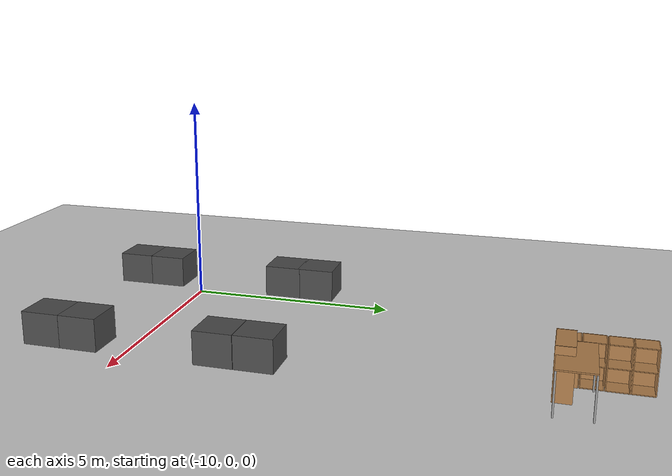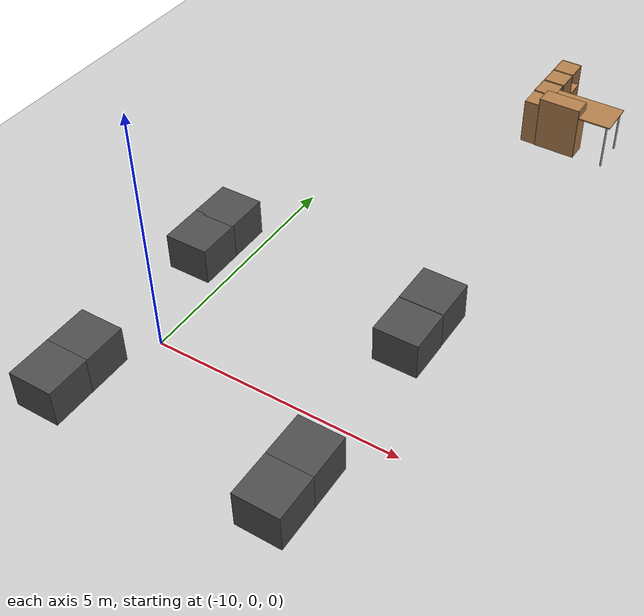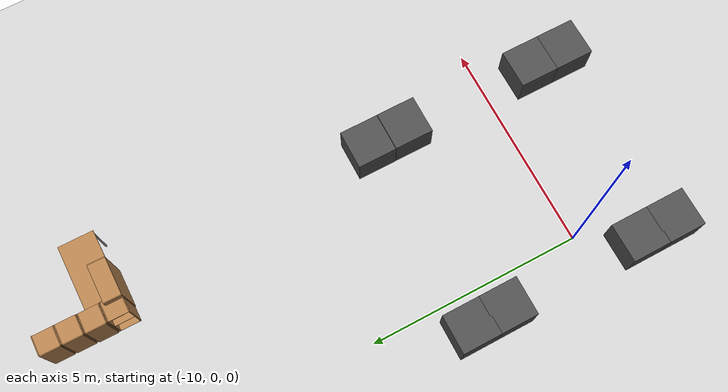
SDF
<sdf version="1.7">
 <world name="default">
  <model name="ground_plane">
   <static>1</static>
   <link name="link">
    <collision name="collision">
     <geometry><plane><normal>0 0 1</normal><size>100 100</size></plane></geometry>
     <surface><friction><ode><mu>100</mu><mu2>50</mu2></ode></friction></surface>
    </collision>
    <visual name="visual">
     <cast_shadows>0</cast_shadows>
     <geometry><plane><normal>0 0 1</normal><size>100 100</size></plane></geometry>
     <material>
      <script><uri>file://media/materials/scripts/gazebo.material</uri><name>Gazebo/Grey</name></script>
     </material>
    </visual>
   </link>
  </model>
  <model name="table">
   <static>1</static>
   <link name="link">
    <collision name="surface">
     <pose>0 0 1 0 -0 0</pose>
     <geometry><box><size>1.5 0.8 0.03</size></box></geometry>
     <surface><friction><ode><mu>0.6</mu><mu2>0.6</mu2></ode></friction></surface>
    </collision>
    <visual name="visual1">
     <pose>0 0 1 0 -0 0</pose>
     <geometry><box><size>1.5 0.8 0.03</size></box></geometry>
     <material>
      <script><uri>file://media/materials/scripts/gazebo.material</uri><name>Gazebo/Wood</name></script>
     </material>
    </visual>
    <collision name="front_left_leg">
     <pose>0.68 0.38 0.5 0 -0 0</pose>
     <geometry><cylinder><radius>0.02</radius><length>1</length></cylinder></geometry>
    </collision>
    <visual name="front_left_leg">
     <pose>0.68 0.38 0.5 0 -0 0</pose>
     <geometry><cylinder><radius>0.02</radius><length>1</length></cylinder></geometry>
     <material>
      <script><uri>file://media/materials/scripts/gazebo.material</uri><name>Gazebo/Grey</name></script>
     </material>
    </visual>
    <collision name="front_right_leg">
     <pose>0.68 -0.38 0.5 0 -0 0</pose>
     <geometry><cylinder><radius>0.02</radius><length>1</length></cylinder></geometry>
    </collision>
    <visual name="front_right_leg">
     <pose>0.68 -0.38 0.5 0 -0 0</pose>
     <geometry><cylinder><radius>0.02</radius><length>1</length></cylinder></geometry>
     <material>
      <script><uri>file://media/materials/scripts/gazebo.material</uri><name>Gazebo/Grey</name></script>
     </material>
    </visual>
    <collision name="back_right_leg">
     <pose>-0.68 -0.38 0.5 0 -0 0</pose>
     <geometry><cylinder><radius>0.02</radius><length>1</length></cylinder></geometry>
    </collision>
    <visual name="back_right_leg">
     <pose>-0.68 -0.38 0.5 0 -0 0</pose>
     <geometry><cylinder><radius>0.02</radius><length>1</length></cylinder></geometry>
     <material>
      <script><uri>file://media/materials/scripts/gazebo.material</uri><name>Gazebo/Grey</name></script>
     </material>
    </visual>
    <collision name="back_left_leg">
     <pose>-0.68 0.38 0.5 0 -0 0</pose>
     <geometry><cylinder><radius>0.02</radius><length>1</length></cylinder></geometry>
    </collision>
    <visual name="back_left_leg">
     <pose>-0.68 0.38 0.5 0 -0 0</pose>
     <geometry><cylinder><radius>0.02</radius><length>1</length></cylinder></geometry>
     <material>
      <script><uri>file://media/materials/scripts/gazebo.material</uri><name>Gazebo/Grey</name></script>
     </material>
    </visual>
   </link>
   <pose>-5.99294 9.5753 0 0 -0 0</pose>
  </model>
  <model name="cabinet_clone_0">
   <static>1</static>
   <link name="cabinet_bottom_plate">
    <inertial>
     <pose>0 0 -1 0 -0 0</pose>
     <inertia><ixx>2.05</ixx><ixy>0</ixy><ixz>0</ixz><iyy>2.05</iyy><iyz>0</iyz><izz>2.05</izz></inertia>
     <mass>25</mass>
    </inertial>
    <collision name="cabinet_bottom_plate_geom">
     <pose>0 0 0.01 0 -0 0</pose>
     <geometry><box><size>0.45 0.45 0.02</size></box></geometry>
    </collision>
    <visual name="cabinet_bottom_plate_geom_visual">
     <pose>0 0 0.01 0 -0 0</pose>
     <geometry><box><size>0.45 0.45 0.02</size></box></geometry>
     <material>
      <script><uri>file://media/materials/scripts/gazebo.material</uri><name>Gazebo/Wood</name></script>
     </material>
    </visual>
    <collision name="cabinet_bottom_plate_geom_cabinet_back_plate">
     <pose>0.235 0 0.51 0 -0 0</pose>
     <geometry><box><size>0.02 0.45 1.02</size></box></geometry>
    </collision>
    <visual name="cabinet_bottom_plate_geom_cabinet_back_plate_visual">
     <pose>0.235 0 0.51 0 -0 0</pose>
     <geometry><box><size>0.02 0.45 1.02</size></box></geometry>
     <material>
      <script><uri>file://media/materials/scripts/gazebo.material</uri><name>Gazebo/Wood</name></script>
     </material>
    </visual>
    <collision name="cabinet_bottom_plate_geom_cabinet_left_plate">
     <pose>0 0.235 0.51 0 -0 0</pose>
     <geometry><box><size>0.45 0.02 1.02</size></box></geometry>
    </collision>
    <visual name="cabinet_bottom_plate_geom_cabinet_left_plate_visual">
     <pose>0 0.235 0.51 0 -0 0</pose>
     <geometry><box><size>0.45 0.02 1.02</size></box></geometry>
     <material>
      <script><uri>file://media/materials/scripts/gazebo.material</uri><name>Gazebo/Wood</name></script>
     </material>
    </visual>
    <collision name="cabinet_bottom_plate_geom_cabinet_middle_plate">
     <pose>0 0 0.51 0 -0 0</pose>
     <geometry><box><size>0.45 0.45 0.02</size></box></geometry>
    </collision>
    <visual name="cabinet_bottom_plate_geom_cabinet_middle_plate_visual">
     <pose>0 0 0.51 0 -0 0</pose>
     <geometry><box><size>0.45 0.45 0.02</size></box></geometry>
     <material>
      <script><uri>file://media/materials/scripts/gazebo.material</uri><name>Gazebo/Wood</name></script>
     </material>
    </visual>
    <collision name="cabinet_bottom_plate_geom_cabinet_right_plate">
     <pose>0 -0.235 0.51 0 -0 0</pose>
     <geometry><box><size>0.45 0.02 1.02</size></box></geometry>
    </collision>
    <visual name="cabinet_bottom_plate_geom_cabinet_right_plate_visual">
     <pose>0 -0.235 0.51 0 -0 0</pose>
     <geometry><box><size>0.45 0.02 1.02</size></box></geometry>
     <material>
      <script><uri>file://media/materials/scripts/gazebo.material</uri><name>Gazebo/Wood</name></script>
     </material>
    </visual>
    <collision name="cabinet_bottom_plate_geom_cabinet_top_plate">
     <pose>0 0 1.01 0 -0 0</pose>
     <geometry><box><size>0.45 0.45 0.02</size></box></geometry>
    </collision>
    <visual name="cabinet_bottom_plate_geom_cabinet_top_plate_visual">
     <pose>0 0 1.01 0 -0 0</pose>
     <geometry><box><size>0.45 0.45 0.02</size></box></geometry>
     <material>
      <script><uri>file://media/materials/scripts/gazebo.material</uri><name>Gazebo/Wood</name></script>
     </material>
    </visual>
   </link>
   <pose>-6.97745 9.41498 0 0 -0 0</pose>
  </model>
  <model name="bookshelf_clone_2">
   <static>1</static>
   <link name="link">
    <inertial><mass>1</mass></inertial>
    <collision name="back">
     <pose>0 0.005 0.6 0 -0 0</pose>
     <geometry><box><size>0.9 0.01 1.2</size></box></geometry>
    </collision>
    <visual name="visual1">
     <pose>0 0.005 0.6 0 -0 0</pose>
     <geometry><box><size>0.9 0.01 1.2</size></box></geometry>
     <material>
      <script><uri>file://media/materials/scripts/gazebo.material</uri><name>Gazebo/Wood</name></script>
     </material>
    </visual>
    <collision name="left_side">
     <pose>0.45 -0.195 0.6 0 -0 0</pose>
     <geometry><box><size>0.02 0.4 1.2</size></box></geometry>
    </collision>
    <visual name="visual2">
     <pose>0.45 -0.195 0.6 0 -0 0</pose>
     <geometry><box><size>0.02 0.4 1.2</size></box></geometry>
     <material>
      <script><uri>file://media/materials/scripts/gazebo.material</uri><name>Gazebo/Wood</name></script>
     </material>
    </visual>
    <collision name="right_side">
     <pose>-0.45 -0.195 0.6 0 -0 0</pose>
     <geometry><box><size>0.02 0.4 1.2</size></box></geometry>
    </collision>
    <visual name="visual3">
     <pose>-0.45 -0.195 0.6 0 -0 0</pose>
     <geometry><box><size>0.02 0.4 1.2</size></box></geometry>
     <material>
      <script><uri>file://media/materials/scripts/gazebo.material</uri><name>Gazebo/Wood</name></script>
     </material>
    </visual>
    <collision name="bottom">
     <pose>0 -0.195 0.03 0 -0 0</pose>
     <geometry><box><size>0.88 0.4 0.06</size></box></geometry>
    </collision>
    <visual name="visual4">
     <pose>0 -0.195 0.03 0 -0 0</pose>
     <geometry><box><size>0.88 0.4 0.06</size></box></geometry>
     <material>
      <script><uri>file://media/materials/scripts/gazebo.material</uri><name>Gazebo/Wood</name></script>
     </material>
    </visual>
    <collision name="top">
     <pose>0 -0.195 1.19 0 -0 0</pose>
     <geometry><box><size>0.88 0.4 0.02</size></box></geometry>
    </collision>
    <visual name="visual5">
     <pose>0 -0.195 1.19 0 -0 0</pose>
     <geometry><box><size>0.88 0.4 0.02</size></box></geometry>
     <material>
      <script><uri>file://media/materials/scripts/gazebo.material</uri><name>Gazebo/Wood</name></script>
     </material>
    </visual>
    <collision name="low_shelf">
     <pose>0 -0.195 0.43 0 -0 0</pose>
     <geometry><box><size>0.88 0.4 0.02</size></box></geometry>
    </collision>
    <visual name="visual6">
     <pose>0 -0.195 0.43 0 -0 0</pose>
     <geometry><box><size>0.88 0.4 0.02</size></box></geometry>
     <material>
      <script><uri>file://media/materials/scripts/gazebo.material</uri><name>Gazebo/Wood</name></script>
     </material>
    </visual>
    <collision name="high_shelf">
     <pose>0 -0.195 0.8 0 -0 0</pose>
     <geometry><box><size>0.88 0.4 0.02</size></box></geometry>
    </collision>
    <visual name="visual7">
     <pose>0 -0.195 0.8 0 -0 0</pose>
     <geometry><box><size>0.88 0.4 0.02</size></box></geometry>
     <material>
      <script><uri>file://media/materials/scripts/gazebo.material</uri><name>Gazebo/Wood</name></script>
     </material>
    </visual>
   </link>
   <pose>-6.40578 9.16191 0 0 -0 3.13728</pose>
  </model>
  <model name="cabinet_clone_0_clone">
   <static>1</static>
   <link name="cabinet_bottom_plate">
    <inertial>
     <pose>0 0 -1 0 -0 0</pose>
     <inertia><ixx>2.05</ixx><ixy>0</ixy><ixz>0</ixz><iyy>2.05</iyy><iyz>0</iyz><izz>2.05</izz></inertia>
     <mass>25</mass>
    </inertial>
    <collision name="cabinet_bottom_plate_geom">
     <pose>0 0 0.01 0 -0 0</pose>
     <geometry><box><size>0.45 0.45 0.02</size></box></geometry>
    </collision>
    <visual name="cabinet_bottom_plate_geom_visual">
     <pose>0 0 0.01 0 -0 0</pose>
     <geometry><box><size>0.45 0.45 0.02</size></box></geometry>
     <material>
      <script><uri>file://media/materials/scripts/gazebo.material</uri><name>Gazebo/Wood</name></script>
     </material>
    </visual>
    <collision name="cabinet_bottom_plate_geom_cabinet_back_plate">
     <pose>0.235 0 0.51 0 -0 0</pose>
     <geometry><box><size>0.02 0.45 1.02</size></box></geometry>
    </collision>
    <visual name="cabinet_bottom_plate_geom_cabinet_back_plate_visual">
     <pose>0.235 0 0.51 0 -0 0</pose>
     <geometry><box><size>0.02 0.45 1.02</size></box></geometry>
     <material>
      <script><uri>file://media/materials/scripts/gazebo.material</uri><name>Gazebo/Wood</name></script>
     </material>
    </visual>
    <collision name="cabinet_bottom_plate_geom_cabinet_left_plate">
     <pose>0 0.235 0.51 0 -0 0</pose>
     <geometry><box><size>0.45 0.02 1.02</size></box></geometry>
    </collision>
    <visual name="cabinet_bottom_plate_geom_cabinet_left_plate_visual">
     <pose>0 0.235 0.51 0 -0 0</pose>
     <geometry><box><size>0.45 0.02 1.02</size></box></geometry>
     <material>
      <script><uri>file://media/materials/scripts/gazebo.material</uri><name>Gazebo/Wood</name></script>
     </material>
    </visual>
    <collision name="cabinet_bottom_plate_geom_cabinet_middle_plate">
     <pose>0 0 0.51 0 -0 0</pose>
     <geometry><box><size>0.45 0.45 0.02</size></box></geometry>
    </collision>
    <visual name="cabinet_bottom_plate_geom_cabinet_middle_plate_visual">
     <pose>0 0 0.51 0 -0 0</pose>
     <geometry><box><size>0.45 0.45 0.02</size></box></geometry>
     <material>
      <script><uri>file://media/materials/scripts/gazebo.material</uri><name>Gazebo/Wood</name></script>
     </material>
    </visual>
    <collision name="cabinet_bottom_plate_geom_cabinet_right_plate">
     <pose>0 -0.235 0.51 0 -0 0</pose>
     <geometry><box><size>0.45 0.02 1.02</size></box></geometry>
    </collision>
    <visual name="cabinet_bottom_plate_geom_cabinet_right_plate_visual">
     <pose>0 -0.235 0.51 0 -0 0</pose>
     <geometry><box><size>0.45 0.02 1.02</size></box></geometry>
     <material>
      <script><uri>file://media/materials/scripts/gazebo.material</uri><name>Gazebo/Wood</name></script>
     </material>
    </visual>
    <collision name="cabinet_bottom_plate_geom_cabinet_top_plate">
     <pose>0 0 1.01 0 -0 0</pose>
     <geometry><box><size>0.45 0.45 0.02</size></box></geometry>
    </collision>
    <visual name="cabinet_bottom_plate_geom_cabinet_top_plate_visual">
     <pose>0 0 1.01 0 -0 0</pose>
     <geometry><box><size>0.45 0.45 0.02</size></box></geometry>
     <material>
      <script><uri>file://media/materials/scripts/gazebo.material</uri><name>Gazebo/Wood</name></script>
     </material>
    </visual>
   </link>
   <pose>-6.97028 9.91562 0 0 -0 3.13538</pose>
  </model>
  <model name="cabinet_clone_0_clone_0">
   <static>1</static>
   <link name="cabinet_bottom_plate">
    <inertial>
     <pose>0 0 -1 0 -0 0</pose>
     <inertia><ixx>2.05</ixx><ixy>0</ixy><ixz>0</ixz><iyy>2.05</iyy><iyz>0</iyz><izz>2.05</izz></inertia>
     <mass>25</mass>
    </inertial>
    <collision name="cabinet_bottom_plate_geom">
     <pose>0 0 0.01 0 -0 0</pose>
     <geometry><box><size>0.45 0.45 0.02</size></box></geometry>
    </collision>
    <visual name="cabinet_bottom_plate_geom_visual">
     <pose>0 0 0.01 0 -0 0</pose>
     <geometry><box><size>0.45 0.45 0.02</size></box></geometry>
     <material>
      <script><uri>file://media/materials/scripts/gazebo.material</uri><name>Gazebo/Wood</name></script>
     </material>
    </visual>
    <collision name="cabinet_bottom_plate_geom_cabinet_back_plate">
     <pose>0.235 0 0.51 0 -0 0</pose>
     <geometry><box><size>0.02 0.45 1.02</size></box></geometry>
    </collision>
    <visual name="cabinet_bottom_plate_geom_cabinet_back_plate_visual">
     <pose>0.235 0 0.51 0 -0 0</pose>
     <geometry><box><size>0.02 0.45 1.02</size></box></geometry>
     <material>
      <script><uri>file://media/materials/scripts/gazebo.material</uri><name>Gazebo/Wood</name></script>
     </material>
    </visual>
    <collision name="cabinet_bottom_plate_geom_cabinet_left_plate">
     <pose>0 0.235 0.51 0 -0 0</pose>
     <geometry><box><size>0.45 0.02 1.02</size></box></geometry>
    </collision>
    <visual name="cabinet_bottom_plate_geom_cabinet_left_plate_visual">
     <pose>0 0.235 0.51 0 -0 0</pose>
     <geometry><box><size>0.45 0.02 1.02</size></box></geometry>
     <material>
      <script><uri>file://media/materials/scripts/gazebo.material</uri><name>Gazebo/Wood</name></script>
     </material>
    </visual>
    <collision name="cabinet_bottom_plate_geom_cabinet_middle_plate">
     <pose>0 0 0.51 0 -0 0</pose>
     <geometry><box><size>0.45 0.45 0.02</size></box></geometry>
    </collision>
    <visual name="cabinet_bottom_plate_geom_cabinet_middle_plate_visual">
     <pose>0 0 0.51 0 -0 0</pose>
     <geometry><box><size>0.45 0.45 0.02</size></box></geometry>
     <material>
      <script><uri>file://media/materials/scripts/gazebo.material</uri><name>Gazebo/Wood</name></script>
     </material>
    </visual>
    <collision name="cabinet_bottom_plate_geom_cabinet_right_plate">
     <pose>0 -0.235 0.51 0 -0 0</pose>
     <geometry><box><size>0.45 0.02 1.02</size></box></geometry>
    </collision>
    <visual name="cabinet_bottom_plate_geom_cabinet_right_plate_visual">
     <pose>0 -0.235 0.51 0 -0 0</pose>
     <geometry><box><size>0.45 0.02 1.02</size></box></geometry>
     <material>
      <script><uri>file://media/materials/scripts/gazebo.material</uri><name>Gazebo/Wood</name></script>
     </material>
    </visual>
    <collision name="cabinet_bottom_plate_geom_cabinet_top_plate">
     <pose>0 0 1.01 0 -0 0</pose>
     <geometry><box><size>0.45 0.45 0.02</size></box></geometry>
    </collision>
    <visual name="cabinet_bottom_plate_geom_cabinet_top_plate_visual">
     <pose>0 0 1.01 0 -0 0</pose>
     <geometry><box><size>0.45 0.45 0.02</size></box></geometry>
     <material>
      <script><uri>file://media/materials/scripts/gazebo.material</uri><name>Gazebo/Wood</name></script>
     </material>
    </visual>
   </link>
   <pose>-6.96165 10.418 0 0 -0 3.13538</pose>
  </model>
  <model name="cabinet_clone_0_clone_1">
   <static>1</static>
   <link name="cabinet_bottom_plate">
    <inertial>
     <pose>0 0 -1 0 -0 0</pose>
     <inertia><ixx>2.05</ixx><ixy>0</ixy><ixz>0</ixz><iyy>2.05</iyy><iyz>0</iyz><izz>2.05</izz></inertia>
     <mass>25</mass>
    </inertial>
    <collision name="cabinet_bottom_plate_geom">
     <pose>0 0 0.01 0 -0 0</pose>
     <geometry><box><size>0.45 0.45 0.02</size></box></geometry>
    </collision>
    <visual name="cabinet_bottom_plate_geom_visual">
     <pose>0 0 0.01 0 -0 0</pose>
     <geometry><box><size>0.45 0.45 0.02</size></box></geometry>
     <material>
      <script><uri>file://media/materials/scripts/gazebo.material</uri><name>Gazebo/Wood</name></script>
     </material>
    </visual>
    <collision name="cabinet_bottom_plate_geom_cabinet_back_plate">
     <pose>0.235 0 0.51 0 -0 0</pose>
     <geometry><box><size>0.02 0.45 1.02</size></box></geometry>
    </collision>
    <visual name="cabinet_bottom_plate_geom_cabinet_back_plate_visual">
     <pose>0.235 0 0.51 0 -0 0</pose>
     <geometry><box><size>0.02 0.45 1.02</size></box></geometry>
     <material>
      <script><uri>file://media/materials/scripts/gazebo.material</uri><name>Gazebo/Wood</name></script>
     </material>
    </visual>
    <collision name="cabinet_bottom_plate_geom_cabinet_left_plate">
     <pose>0 0.235 0.51 0 -0 0</pose>
     <geometry><box><size>0.45 0.02 1.02</size></box></geometry>
    </collision>
    <visual name="cabinet_bottom_plate_geom_cabinet_left_plate_visual">
     <pose>0 0.235 0.51 0 -0 0</pose>
     <geometry><box><size>0.45 0.02 1.02</size></box></geometry>
     <material>
      <script><uri>file://media/materials/scripts/gazebo.material</uri><name>Gazebo/Wood</name></script>
     </material>
    </visual>
    <collision name="cabinet_bottom_plate_geom_cabinet_middle_plate">
     <pose>0 0 0.51 0 -0 0</pose>
     <geometry><box><size>0.45 0.45 0.02</size></box></geometry>
    </collision>
    <visual name="cabinet_bottom_plate_geom_cabinet_middle_plate_visual">
     <pose>0 0 0.51 0 -0 0</pose>
     <geometry><box><size>0.45 0.45 0.02</size></box></geometry>
     <material>
      <script><uri>file://media/materials/scripts/gazebo.material</uri><name>Gazebo/Wood</name></script>
     </material>
    </visual>
    <collision name="cabinet_bottom_plate_geom_cabinet_right_plate">
     <pose>0 -0.235 0.51 0 -0 0</pose>
     <geometry><box><size>0.45 0.02 1.02</size></box></geometry>
    </collision>
    <visual name="cabinet_bottom_plate_geom_cabinet_right_plate_visual">
     <pose>0 -0.235 0.51 0 -0 0</pose>
     <geometry><box><size>0.45 0.02 1.02</size></box></geometry>
     <material>
      <script><uri>file://media/materials/scripts/gazebo.material</uri><name>Gazebo/Wood</name></script>
     </material>
    </visual>
    <collision name="cabinet_bottom_plate_geom_cabinet_top_plate">
     <pose>0 0 1.01 0 -0 0</pose>
     <geometry><box><size>0.45 0.45 0.02</size></box></geometry>
    </collision>
    <visual name="cabinet_bottom_plate_geom_cabinet_top_plate_visual">
     <pose>0 0 1.01 0 -0 0</pose>
     <geometry><box><size>0.45 0.45 0.02</size></box></geometry>
     <material>
      <script><uri>file://media/materials/scripts/gazebo.material</uri><name>Gazebo/Wood</name></script>
     </material>
    </visual>
   </link>
   <pose>-6.95978 10.9123 0 0 -0 3.13538</pose>
  </model>
  <model name="darkgreybox">
   <link name="link">
    <inertial>
     <mass>1</mass>
     <inertia>
      <ixx>0.166667</ixx>
      <ixy>0</ixy>
      <ixz>0</ixz>
      <iyy>0.166667</iyy>
      <iyz>0</iyz>
      <izz>0.166667</izz>
     </inertia>
    </inertial>
    <visual name="visual">
     <geometry><box><size>0.909396 0.912851 0.783272</size></box></geometry>
     <material>
      <script><name>Gazebo/DarkGrey</name><uri>file://media/materials/scripts/gazebo.material</uri></script>
      <shader type="pixel"><normal_map>__default__</normal_map></shader>
      <ambient>0.175 0.175 0.175 1</ambient>
      <diffuse>0.175 0.175 0.175 1</diffuse>
      <specular>0.175 0.175 0.175 1</specular>
      <emissive>0 0 0 1</emissive>
     </material>
    </visual>
    <collision name="collision">
     <geometry><box><size>0.909396 0.912851 0.783272</size></box></geometry>
     <surface>
      <friction>
       <ode><mu>1</mu><mu2>1</mu2><fdir1>0 0 0</fdir1><slip1>0</slip1><slip2>0</slip2></ode>
       <torsional>
        <coefficient>1</coefficient>
        <patch_radius>0</patch_radius>
        <surface_radius>0</surface_radius>
        <use_patch_radius>1</use_patch_radius>
        <ode><slip>0</slip></ode>
       </torsional>
      </friction>
      <bounce><restitution_coefficient>0</restitution_coefficient><threshold>1e+06</threshold></bounce>
      <contact>
       <collide_without_contact>0</collide_without_contact>
       <collide_without_contact_bitmask>1</collide_without_contact_bitmask>
       <collide_bitmask>1</collide_bitmask>
       <ode>
        <soft_cfm>0</soft_cfm>
        <soft_erp>0.2</soft_erp>
        <kp>1e+13</kp>
        <kd>1</kd>
        <max_vel>0.01</max_vel>
        <min_depth>0</min_depth>
       </ode>
       <bullet>
        <split_impulse>1</split_impulse>
        <split_impulse_penetration_threshold>-0.01</split_impulse_penetration_threshold>
        <soft_cfm>0</soft_cfm>
        <soft_erp>0.2</soft_erp>
        <kp>1e+13</kp>
        <kd>1</kd>
       </bullet>
      </contact>
     </surface>
    </collision>
   </link>
   <static>0</static>
   <pose>-6.09292 2.14582 0.391636 0 -0 0.000168</pose>
  </model>
  <model name="darkgreybox_clone">
   <link name="link">
    <inertial>
     <mass>1</mass>
     <inertia>
      <ixx>0.166667</ixx>
      <ixy>0</ixy>
      <ixz>0</ixz>
      <iyy>0.166667</iyy>
      <iyz>0</iyz>
      <izz>0.166667</izz>
     </inertia>
    </inertial>
    <visual name="visual">
     <geometry><box><size>0.909396 0.912851 0.783272</size></box></geometry>
     <material>
      <script><name>Gazebo/DarkGrey</name><uri>file://media/materials/scripts/gazebo.material</uri></script>
      <shader type="pixel"><normal_map>__default__</normal_map></shader>
      <ambient>0.175 0.175 0.175 1</ambient>
      <diffuse>0.175 0.175 0.175 1</diffuse>
      <specular>0.175 0.175 0.175 1</specular>
      <emissive>0 0 0 1</emissive>
     </material>
    </visual>
    <collision name="collision">
     <geometry><box><size>0.909396 0.912851 0.783272</size></box></geometry>
     <surface>
      <friction>
       <ode><mu>1</mu><mu2>1</mu2><fdir1>0 0 0</fdir1><slip1>0</slip1><slip2>0</slip2></ode>
       <torsional>
        <coefficient>1</coefficient>
        <patch_radius>0</patch_radius>
        <surface_radius>0</surface_radius>
        <use_patch_radius>1</use_patch_radius>
        <ode><slip>0</slip></ode>
       </torsional>
      </friction>
      <bounce><restitution_coefficient>0</restitution_coefficient><threshold>1e+06</threshold></bounce>
      <contact>
       <collide_without_contact>0</collide_without_contact>
       <collide_without_contact_bitmask>1</collide_without_contact_bitmask>
       <collide_bitmask>1</collide_bitmask>
       <ode>
        <soft_cfm>0</soft_cfm>
        <soft_erp>0.2</soft_erp>
        <kp>1e+13</kp>
        <kd>1</kd>
        <max_vel>0.01</max_vel>
        <min_depth>0</min_depth>
       </ode>
       <bullet>
        <split_impulse>1</split_impulse>
        <split_impulse_penetration_threshold>-0.01</split_impulse_penetration_threshold>
        <soft_cfm>0</soft_cfm>
        <soft_erp>0.2</soft_erp>
        <kp>1e+13</kp>
        <kd>1</kd>
       </bullet>
      </contact>
     </surface>
    </collision>
   </link>
   <static>0</static>
   <pose>-6.09685 3.06718 0.391636 0 -0 0.000168</pose>
  </model>
  <model name="darkgreybox_clone_4">
   <link name="link">
    <inertial>
     <mass>1</mass>
     <inertia>
      <ixx>0.166667</ixx>
      <ixy>0</ixy>
      <ixz>0</ixz>
      <iyy>0.166667</iyy>
      <iyz>0</iyz>
      <izz>0.166667</izz>
     </inertia>
    </inertial>
    <visual name="visual">
     <geometry><box><size>0.909396 0.912851 0.783272</size></box></geometry>
     <material>
      <script><name>Gazebo/DarkGrey</name><uri>file://media/materials/scripts/gazebo.material</uri></script>
      <shader type="pixel"><normal_map>__default__</normal_map></shader>
      <ambient>0.175 0.175 0.175 1</ambient>
      <diffuse>0.175 0.175 0.175 1</diffuse>
      <specular>0.175 0.175 0.175 1</specular>
      <emissive>0 0 0 1</emissive>
     </material>
    </visual>
    <collision name="collision">
     <geometry><box><size>0.909396 0.912851 0.783272</size></box></geometry>
     <surface>
      <friction>
       <ode><mu>1</mu><mu2>1</mu2><fdir1>0 0 0</fdir1><slip1>0</slip1><slip2>0</slip2></ode>
       <torsional>
        <coefficient>1</coefficient>
        <patch_radius>0</patch_radius>
        <surface_radius>0</surface_radius>
        <use_patch_radius>1</use_patch_radius>
        <ode><slip>0</slip></ode>
       </torsional>
      </friction>
      <bounce><restitution_coefficient>0</restitution_coefficient><threshold>1e+06</threshold></bounce>
      <contact>
       <collide_without_contact>0</collide_without_contact>
       <collide_without_contact_bitmask>1</collide_without_contact_bitmask>
       <collide_bitmask>1</collide_bitmask>
       <ode>
        <soft_cfm>0</soft_cfm>
        <soft_erp>0.2</soft_erp>
        <kp>1e+13</kp>
        <kd>1</kd>
        <max_vel>0.01</max_vel>
        <min_depth>0</min_depth>
       </ode>
       <bullet>
        <split_impulse>1</split_impulse>
        <split_impulse_penetration_threshold>-0.01</split_impulse_penetration_threshold>
        <soft_cfm>0</soft_cfm>
        <soft_erp>0.2</soft_erp>
        <kp>1e+13</kp>
        <kd>1</kd>
       </bullet>
      </contact>
     </surface>
    </collision>
   </link>
   <static>0</static>
   <pose>-10.7059 3.06725 0.391636 0 -0 0.000168</pose>
  </model>
  <model name="darkgreybox_clone_5">
   <link name="link">
    <inertial>
     <mass>1</mass>
     <inertia>
      <ixx>0.166667</ixx>
      <ixy>0</ixy>
      <ixz>0</ixz>
      <iyy>0.166667</iyy>
      <iyz>0</iyz>
      <izz>0.166667</izz>
     </inertia>
    </inertial>
    <visual name="visual">
     <geometry><box><size>0.909396 0.912851 0.783272</size></box></geometry>
     <material>
      <script><name>Gazebo/DarkGrey</name><uri>file://media/materials/scripts/gazebo.material</uri></script>
      <shader type="pixel"><normal_map>__default__</normal_map></shader>
      <ambient>0.175 0.175 0.175 1</ambient>
      <diffuse>0.175 0.175 0.175 1</diffuse>
      <specular>0.175 0.175 0.175 1</specular>
      <emissive>0 0 0 1</emissive>
     </material>
    </visual>
    <collision name="collision">
     <geometry><box><size>0.909396 0.912851 0.783272</size></box></geometry>
     <surface>
      <friction>
       <ode><mu>1</mu><mu2>1</mu2><fdir1>0 0 0</fdir1><slip1>0</slip1><slip2>0</slip2></ode>
       <torsional>
        <coefficient>1</coefficient>
        <patch_radius>0</patch_radius>
        <surface_radius>0</surface_radius>
        <use_patch_radius>1</use_patch_radius>
        <ode><slip>0</slip></ode>
       </torsional>
      </friction>
      <bounce><restitution_coefficient>0</restitution_coefficient><threshold>1e+06</threshold></bounce>
      <contact>
       <collide_without_contact>0</collide_without_contact>
       <collide_without_contact_bitmask>1</collide_without_contact_bitmask>
       <collide_bitmask>1</collide_bitmask>
       <ode>
        <soft_cfm>0</soft_cfm>
        <soft_erp>0.2</soft_erp>
        <kp>1e+13</kp>
        <kd>1</kd>
        <max_vel>0.01</max_vel>
        <min_depth>0</min_depth>
       </ode>
       <bullet>
        <split_impulse>1</split_impulse>
        <split_impulse_penetration_threshold>-0.01</split_impulse_penetration_threshold>
        <soft_cfm>0</soft_cfm>
        <soft_erp>0.2</soft_erp>
        <kp>1e+13</kp>
        <kd>1</kd>
       </bullet>
      </contact>
     </surface>
    </collision>
   </link>
   <static>0</static>
   <pose>-10.7055 2.1949 0.391636 0 -0 0.000168</pose>
  </model>
  <model name="darkgreybox_clone_6">
   <link name="link">
    <inertial>
     <mass>1</mass>
     <inertia>
      <ixx>0.166667</ixx>
      <ixy>0</ixy>
      <ixz>0</ixz>
      <iyy>0.166667</iyy>
      <iyz>0</iyz>
      <izz>0.166667</izz>
     </inertia>
    </inertial>
    <visual name="visual">
     <geometry><box><size>0.909396 0.912851 0.783272</size></box></geometry>
     <material>
      <script><name>Gazebo/DarkGrey</name><uri>file://media/materials/scripts/gazebo.material</uri></script>
      <shader type="pixel"><normal_map>__default__</normal_map></shader>
      <ambient>0.175 0.175 0.175 1</ambient>
      <diffuse>0.175 0.175 0.175 1</diffuse>
      <specular>0.175 0.175 0.175 1</specular>
      <emissive>0 0 0 1</emissive>
     </material>
    </visual>
    <collision name="collision">
     <geometry><box><size>0.909396 0.912851 0.783272</size></box></geometry>
     <surface>
      <friction>
       <ode><mu>1</mu><mu2>1</mu2><fdir1>0 0 0</fdir1><slip1>0</slip1><slip2>0</slip2></ode>
       <torsional>
        <coefficient>1</coefficient>
        <patch_radius>0</patch_radius>
        <surface_radius>0</surface_radius>
        <use_patch_radius>1</use_patch_radius>
        <ode><slip>0</slip></ode>
       </torsional>
      </friction>
      <bounce><restitution_coefficient>0</restitution_coefficient><threshold>1e+06</threshold></bounce>
      <contact>
       <collide_without_contact>0</collide_without_contact>
       <collide_without_contact_bitmask>1</collide_without_contact_bitmask>
       <collide_bitmask>1</collide_bitmask>
       <ode>
        <soft_cfm>0</soft_cfm>
        <soft_erp>0.2</soft_erp>
        <kp>1e+13</kp>
        <kd>1</kd>
        <max_vel>0.01</max_vel>
        <min_depth>0</min_depth>
       </ode>
       <bullet>
        <split_impulse>1</split_impulse>
        <split_impulse_penetration_threshold>-0.01</split_impulse_penetration_threshold>
        <soft_cfm>0</soft_cfm>
        <soft_erp>0.2</soft_erp>
        <kp>1e+13</kp>
        <kd>1</kd>
       </bullet>
      </contact>
     </surface>
    </collision>
   </link>
   <static>0</static>
   <pose>-10.7047 -1.0882 0.391636 0 -0 0.000168</pose>
  </model>
  <model name="darkgreybox_clone_7">
   <link name="link">
    <inertial>
     <mass>1</mass>
     <inertia>
      <ixx>0.166667</ixx>
      <ixy>0</ixy>
      <ixz>0</ixz>
      <iyy>0.166667</iyy>
      <iyz>0</iyz>
      <izz>0.166667</izz>
     </inertia>
    </inertial>
    <visual name="visual">
     <geometry><box><size>0.909396 0.912851 0.783272</size></box></geometry>
     <material>
      <script><name>Gazebo/DarkGrey</name><uri>file://media/materials/scripts/gazebo.material</uri></script>
      <shader type="pixel"><normal_map>__default__</normal_map></shader>
      <ambient>0.175 0.175 0.175 1</ambient>
      <diffuse>0.175 0.175 0.175 1</diffuse>
      <specular>0.175 0.175 0.175 1</specular>
      <emissive>0 0 0 1</emissive>
     </material>
    </visual>
    <collision name="collision">
     <geometry><box><size>0.909396 0.912851 0.783272</size></box></geometry>
     <surface>
      <friction>
       <ode><mu>1</mu><mu2>1</mu2><fdir1>0 0 0</fdir1><slip1>0</slip1><slip2>0</slip2></ode>
       <torsional>
        <coefficient>1</coefficient>
        <patch_radius>0</patch_radius>
        <surface_radius>0</surface_radius>
        <use_patch_radius>1</use_patch_radius>
        <ode><slip>0</slip></ode>
       </torsional>
      </friction>
      <bounce><restitution_coefficient>0</restitution_coefficient><threshold>1e+06</threshold></bounce>
      <contact>
       <collide_without_contact>0</collide_without_contact>
       <collide_without_contact_bitmask>1</collide_without_contact_bitmask>
       <collide_bitmask>1</collide_bitmask>
       <ode>
        <soft_cfm>0</soft_cfm>
        <soft_erp>0.2</soft_erp>
        <kp>1e+13</kp>
        <kd>1</kd>
        <max_vel>0.01</max_vel>
        <min_depth>0</min_depth>
       </ode>
       <bullet>
        <split_impulse>1</split_impulse>
        <split_impulse_penetration_threshold>-0.01</split_impulse_penetration_threshold>
        <soft_cfm>0</soft_cfm>
        <soft_erp>0.2</soft_erp>
        <kp>1e+13</kp>
        <kd>1</kd>
       </bullet>
      </contact>
     </surface>
    </collision>
   </link>
   <static>0</static>
   <pose>-10.7054 -1.97244 0.391636 0 -0 0.000168</pose>
  </model>
  <model name="darkgreybox_clone_8">
   <link name="link">
    <inertial>
     <mass>1</mass>
     <inertia>
      <ixx>0.166667</ixx>
      <ixy>0</ixy>
      <ixz>0</ixz>
      <iyy>0.166667</iyy>
      <iyz>0</iyz>
      <izz>0.166667</izz>
     </inertia>
    </inertial>
    <visual name="visual">
     <geometry><box><size>0.909396 0.912851 0.783272</size></box></geometry>
     <material>
      <script><name>Gazebo/DarkGrey</name><uri>file://media/materials/scripts/gazebo.material</uri></script>
      <shader type="pixel"><normal_map>__default__</normal_map></shader>
      <ambient>0.175 0.175 0.175 1</ambient>
      <diffuse>0.175 0.175 0.175 1</diffuse>
      <specular>0.175 0.175 0.175 1</specular>
      <emissive>0 0 0 1</emissive>
     </material>
    </visual>
    <collision name="collision">
     <geometry><box><size>0.909396 0.912851 0.783272</size></box></geometry>
     <surface>
      <friction>
       <ode><mu>1</mu><mu2>1</mu2><fdir1>0 0 0</fdir1><slip1>0</slip1><slip2>0</slip2></ode>
       <torsional>
        <coefficient>1</coefficient>
        <patch_radius>0</patch_radius>
        <surface_radius>0</surface_radius>
        <use_patch_radius>1</use_patch_radius>
        <ode><slip>0</slip></ode>
       </torsional>
      </friction>
      <bounce><restitution_coefficient>0</restitution_coefficient><threshold>1e+06</threshold></bounce>
      <contact>
       <collide_without_contact>0</collide_without_contact>
       <collide_without_contact_bitmask>1</collide_without_contact_bitmask>
       <collide_bitmask>1</collide_bitmask>
       <ode>
        <soft_cfm>0</soft_cfm>
        <soft_erp>0.2</soft_erp>
        <kp>1e+13</kp>
        <kd>1</kd>
        <max_vel>0.01</max_vel>
        <min_depth>0</min_depth>
       </ode>
       <bullet>
        <split_impulse>1</split_impulse>
        <split_impulse_penetration_threshold>-0.01</split_impulse_penetration_threshold>
        <soft_cfm>0</soft_cfm>
        <soft_erp>0.2</soft_erp>
        <kp>1e+13</kp>
        <kd>1</kd>
       </bullet>
      </contact>
     </surface>
    </collision>
   </link>
   <static>0</static>
   <pose>-6.09492 -1.09273 0.391636 0 -0 0.000168</pose>
  </model>
  <model name="darkgreybox_clone_9">
   <link name="link">
    <inertial>
     <mass>1</mass>
     <inertia>
      <ixx>0.166667</ixx>
      <ixy>0</ixy>
      <ixz>0</ixz>
      <iyy>0.166667</iyy>
      <iyz>0</iyz>
      <izz>0.166667</izz>
     </inertia>
    </inertial>
    <visual name="visual">
     <geometry><box><size>0.909396 0.912851 0.783272</size></box></geometry>
     <material>
      <script><name>Gazebo/DarkGrey</name><uri>file://media/materials/scripts/gazebo.material</uri></script>
      <shader type="pixel"><normal_map>__default__</normal_map></shader>
      <ambient>0.175 0.175 0.175 1</ambient>
      <diffuse>0.175 0.175 0.175 1</diffuse>
      <specular>0.175 0.175 0.175 1</specular>
      <emissive>0 0 0 1</emissive>
     </material>
    </visual>
    <collision name="collision">
     <geometry><box><size>0.909396 0.912851 0.783272</size></box></geometry>
     <surface>
      <friction>
       <ode><mu>1</mu><mu2>1</mu2><fdir1>0 0 0</fdir1><slip1>0</slip1><slip2>0</slip2></ode>
       <torsional>
        <coefficient>1</coefficient>
        <patch_radius>0</patch_radius>
        <surface_radius>0</surface_radius>
        <use_patch_radius>1</use_patch_radius>
        <ode><slip>0</slip></ode>
       </torsional>
      </friction>
      <bounce><restitution_coefficient>0</restitution_coefficient><threshold>1e+06</threshold></bounce>
      <contact>
       <collide_without_contact>0</collide_without_contact>
       <collide_without_contact_bitmask>1</collide_without_contact_bitmask>
       <collide_bitmask>1</collide_bitmask>
       <ode>
        <soft_cfm>0</soft_cfm>
        <soft_erp>0.2</soft_erp>
        <kp>1e+13</kp>
        <kd>1</kd>
        <max_vel>0.01</max_vel>
        <min_depth>0</min_depth>
       </ode>
       <bullet>
        <split_impulse>1</split_impulse>
        <split_impulse_penetration_threshold>-0.01</split_impulse_penetration_threshold>
        <soft_cfm>0</soft_cfm>
        <soft_erp>0.2</soft_erp>
        <kp>1e+13</kp>
        <kd>1</kd>
       </bullet>
      </contact>
     </surface>
    </collision>
   </link>
   <static>0</static>
   <pose>-6.09402 -2.00558 0.391636 0 -0 0.000168</pose>
  </model>
 </world>
</sdf>
